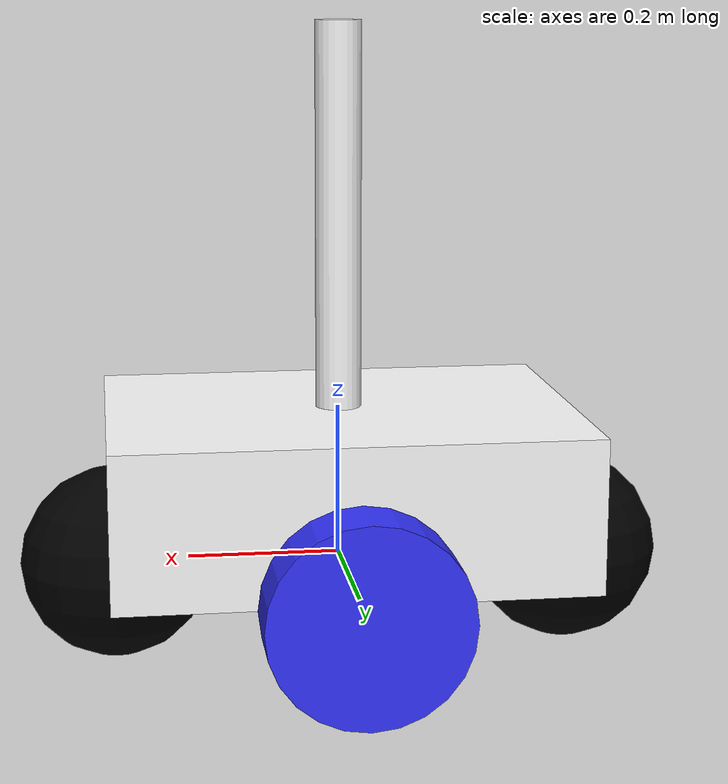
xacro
<?xml version="1.0"?>
<robot xmlns:xacro="http://www.ros.org/wiki/xacro">

    <xacro:include filename="inertial_macros.xacro"/>

    <!-- COLOR -->
    <material name="white">
        <color rgba="1 1 1 1"/>
    </material>

    <material name="orange">
        <color rgba="1 0.3 0.1 1"/>
    </material>

    <material name="blue">
        <color rgba="0.2 0.2 1 1"/>
    </material>

    <material name="black">
        <color rgba="0 0 0 1"/>
    </material>

    <material name="red">
        <color rgba="1 0 0 1"/>
    </material>

    <!-- ROBOT BASE LINK-->
    <link name="base_link">

    </link>

    <joint name="base_link_joint" type="fixed">
        <parent link="base_footprint"/>
        <child link="base_link"/>
        <origin xyz="0 0 0" rpy="0 0 0"/>
    </joint>

    <!-- ROBOT BASE FOOTPRINT -->

    <link name="base_footprint">

    </link>

    <!-- ROBOT CHASSIS -->
    <joint name="chassis_joint" type="fixed">
        <parent link="base_link"/>
        <child link="chassis"/>
        <origin xyz="-0.305 0 0"/>
    </joint>

    <link name="chassis">
        <visual>
            <origin xyz="0.305 0 0.1" />
            <geometry>
                <box size="0.61 0.455 0.2"/>
            </geometry>
            <material name="white"/>
        </visual>
        <collision>
            <origin xyz="0.305 0 0.1" />
            <geometry>
                <box size="0.61 0.455 0.2"/>
            </geometry>
        </collision>
        <xacro:inertial_box mass="0.5" x="0.61" y="0.455" z="0.2">
            <origin xyz="0.305 0 0.1" rpy="0 0 0"/>
        </xacro:inertial_box>
    </link>

    <gazebo reference="chassis">
        <material>Gazebo/White</material>
    </gazebo>

    <!-- SENSOR POLE -->
    <joint name="pole_joint" type="fixed">
    	<parent link="chassis"/>
    	<child link="pole"/>
    	<origin xyz="0.305 0 0.4"/>
    </joint>

    <link name="pole">
    	<visual>
    	    <geometry>
    	    	<cylinder radius="0.03" length="0.6"/>
    	    </geometry>
    	    <material name="white"/>
    	</visual>
    	<collision>
	   <geometry>
    	    	<cylinder radius="0.03" length="0.6"/>
    	    </geometry>
    	</collision>
    	<xacro:inertial_cylinder mass="0.2" length="0.6" radius="0.03">
            <origin xyz="0 0 0" rpy="0 0 0"/>
        </xacro:inertial_cylinder>
    </link>

    <gazebo reference="pole">
        <material>Gazebo/White</material>
    </gazebo>

    <!-- LEFT WHEEL -->
    <joint name="left_wheel_joint" type="continuous">
        <parent link="base_link"/>
        <child link="left_wheel"/>
        <origin xyz="0 0.2705 0" rpy="-${pi/2} 0 0"/>
        <axis xyz="0 0 1"/>
    </joint>

    <link name="left_wheel">
        <visual>
            <geometry>
                <cylinder radius="0.128" length="0.085"/>
            </geometry>
            <material name="blue"/>
        </visual>
        <collision>
            <geometry>
                <cylinder radius="0.128" length="0.085"/>
            </geometry>
        </collision>
        <xacro:inertial_cylinder mass="0.1" length="0.085" radius="0.128">
            <origin xyz="0 0 0" rpy="0 0 0"/>
        </xacro:inertial_cylinder>
    </link>

    <gazebo reference="left_wheel">
        <material>Gazebo/Blue</material>
    </gazebo>

    <!-- RIGHT WHEEL -->
    <joint name="right_wheel_joint" type="continuous">
        <parent link="base_link"/>
        <child link="right_wheel"/>
        <origin xyz="0 -0.2705 0" rpy="${pi/2} 0 0"/>
        <axis xyz="0 0 -1"/>
    </joint>

    <link name="right_wheel">
        <visual>
            <geometry>
                <cylinder radius="0.128" length="0.085"/>
            </geometry>
            <material name="blue"/>
        </visual>
        <collision>
            <geometry>
                <cylinder radius="0.128" length="0.085"/>
            </geometry>
        </collision>
        <xacro:inertial_cylinder mass="0.1" length="0.085" radius="0.128">
            <origin xyz="0 0 0" rpy="0 0 0"/>
        </xacro:inertial_cylinder>
    </link>

    <gazebo reference="right_wheel">
        <material>Gazebo/Blue</material>
    </gazebo>

    <!-- CASTER WHEEL FRONT -->
    <joint name="caster_wheel_front_joint" type="fixed">
        <parent link="chassis"/>
        <child link="caster_wheel_front"/>
        <origin xyz="0.6 0 0"/>
    </joint>

    <link name="caster_wheel_front">
        <visual>
            <geometry>
                <sphere radius="0.125"/>
            </geometry>
            <material name="black"/>
        </visual>
        <collision>
            <geometry>
                <sphere radius="0.125"/>
            </geometry>
        </collision>
        <xacro:inertial_sphere mass="0.1" radius="0.125">
            <origin xyz="0 0 0" rpy="0 0 0"/>
        </xacro:inertial_sphere>
    </link>

    <gazebo reference="caster_wheel_front">
        <material>Gazebo/Black</material>
        <mu1>0.00001</mu1>
        <mu2>0.00001</mu2>
    </gazebo>

    <!-- CASTER WHEEL BACK -->

    <joint name="caster_wheel_back_joint" type="fixed">
        <parent link="chassis"/>
        <child link="caster_wheel_back"/>
        <origin xyz="0 0 0"/>
    </joint>

    <link name="caster_wheel_back">
        <visual>
            <geometry>
                <sphere radius="0.125"/>
            </geometry>
            <material name="black"/>
        </visual>
        <collision>
            <geometry>
                <sphere radius="0.125"/>
            </geometry>
        </collision>
        <xacro:inertial_sphere mass="0.1" radius="0.125">
            <origin xyz="0 0 0" rpy="0 0 0"/>
        </xacro:inertial_sphere>
    </link>

    <gazebo reference="caster_wheel_back">
        <material>Gazebo/Black</material>
        <mu1>0.00001</mu1>
        <mu2>0.00001</mu2>
    </gazebo>
</robot>
